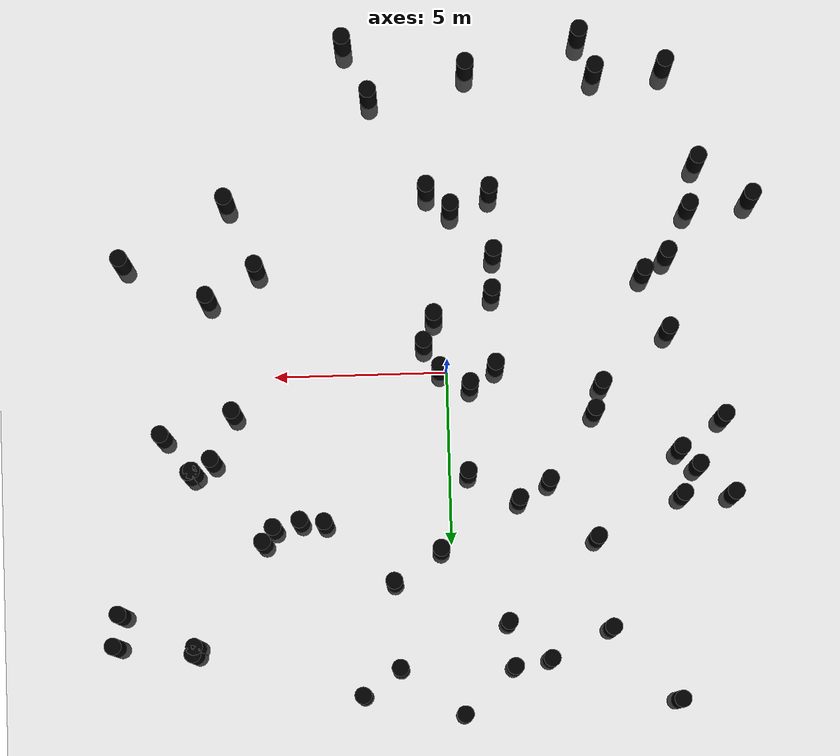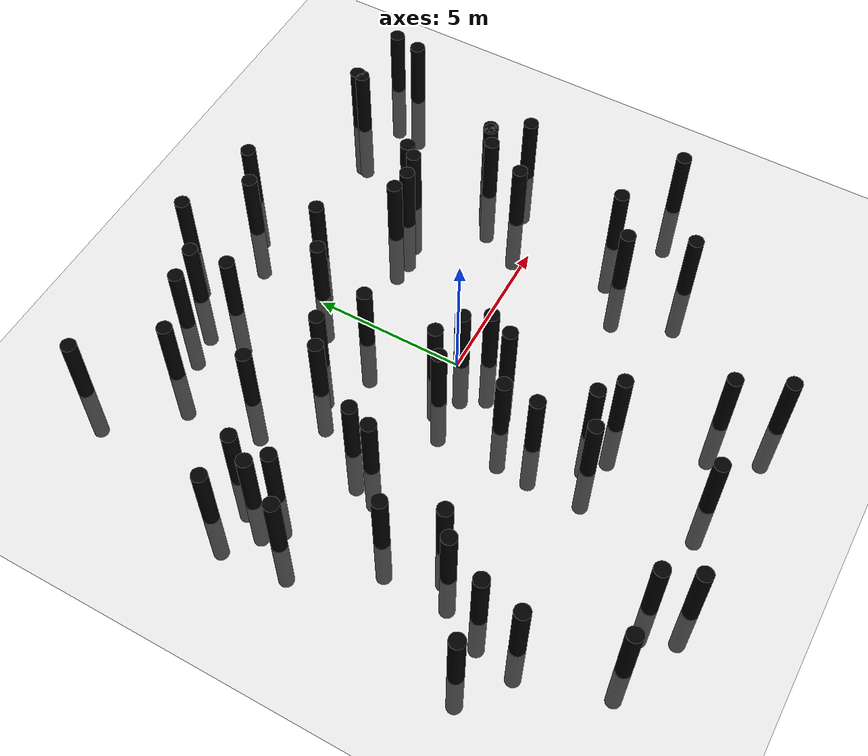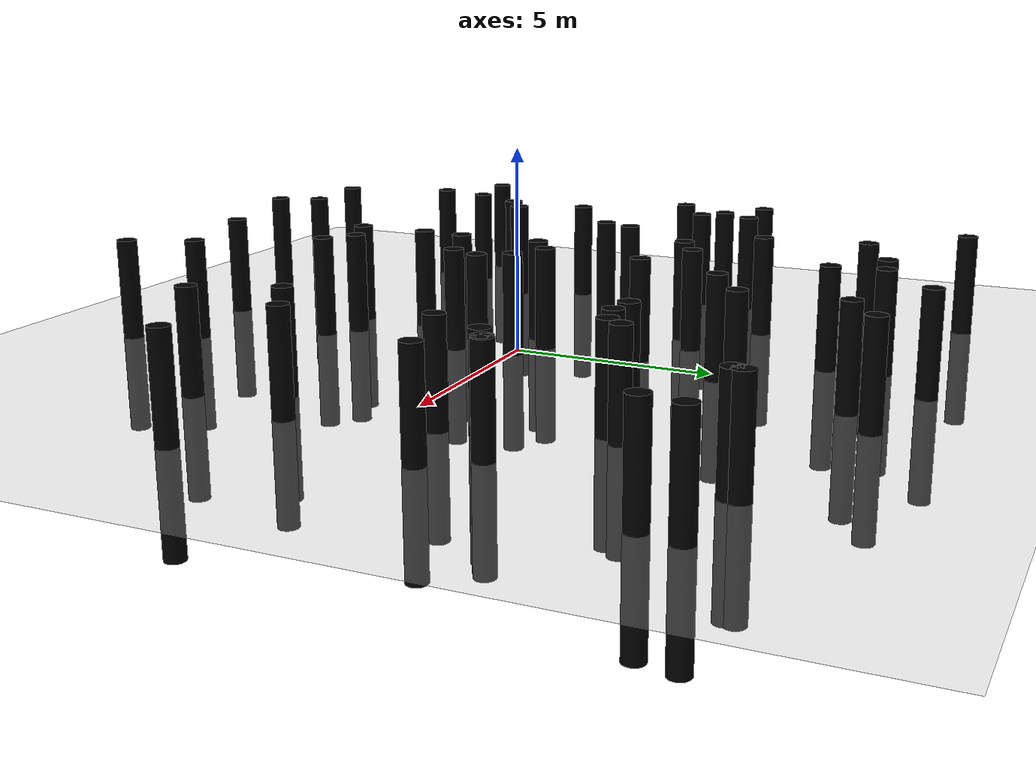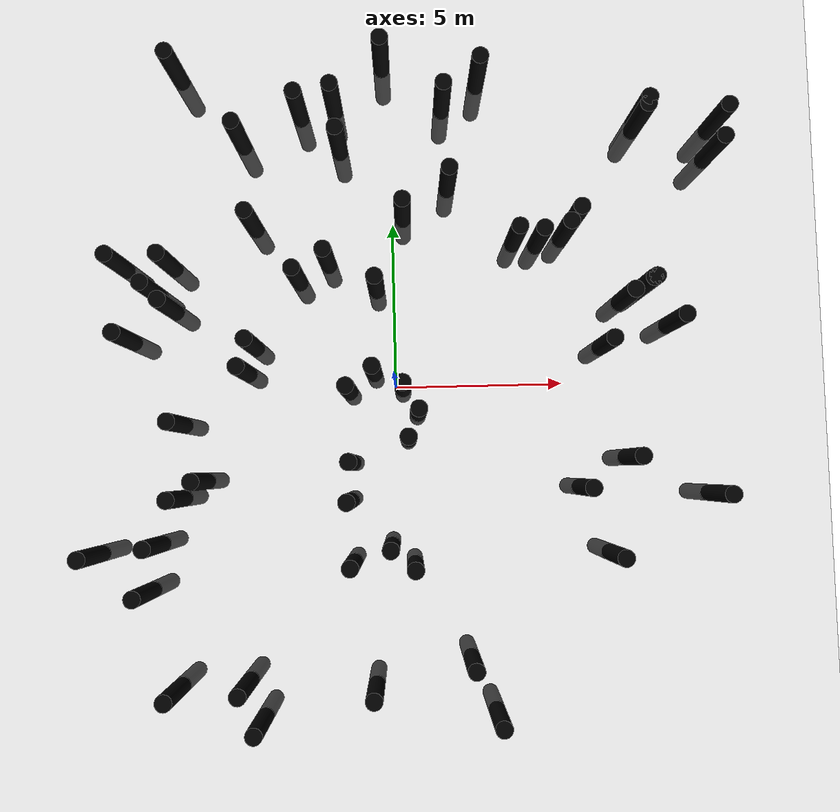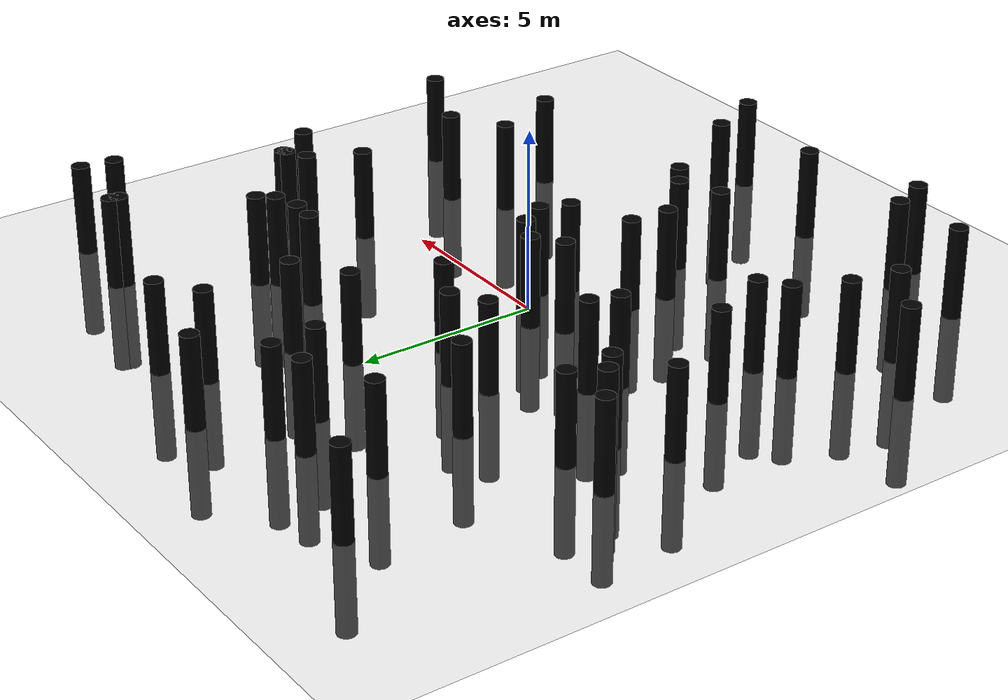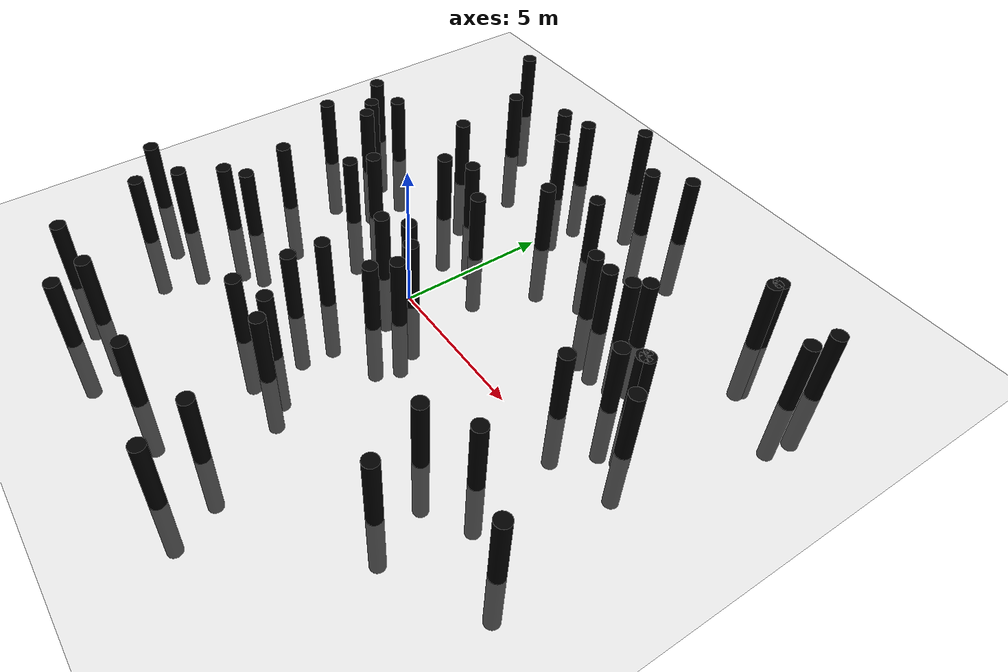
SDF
<?xml version="1.0"?>

<sdf version="1.6">
    <world name="world60">
        <physics name="4ms" type="ignored">
            <max_step_size>0.004</max_step_size>
            <real_time_factor>1.0</real_time_factor>
        </physics>
        <plugin
            filename="ignition-gazebo-physics-system"
            name="ignition::gazebo::systems::Physics">
        </plugin>
        <plugin
            filename="ignition-gazebo-scene-broadcaster-system"
            name="ignition::gazebo::systems::SceneBroadcaster">
        </plugin>
        <plugin
            filename="ignition-gazebo-user-commands-system"
            name="ignition::gazebo::systems::UserCommands">
        </plugin>
        <plugin
            filename="ignition-gazebo-sensors-system"
            name="ignition::gazebo::systems::Sensors">
            <render_engine>ogre2</render_engine>
        </plugin>

        <include>
            <uri>model://ground_plane</uri>
        </include>
        <include>
            <uri>model://pole</uri>
            <name>pole1</name>
            <pose>-7.11 -4.55 0 0 0 0</pose>
        </include>
        <include>
            <uri>model://pole</uri>
            <name>pole2</name>
            <pose>7.48 2.82 0 0 0 0</pose>
        </include>
        <include>
            <uri>model://pole</uri>
            <name>pole3</name>
            <pose>6.29 -5.08 0 0 0 0</pose>
        </include>
        <include>
            <uri>model://pole</uri>
            <name>pole4</name>
            <pose>-4.21 4.95 0 0 0 0</pose>
        </include>
        <include>
            <uri>model://pole</uri>
            <name>pole5</name>
            <pose>-6.53 -8.73 0 0 0 0</pose>
        </include>
        <include>
            <uri>model://pole</uri>
            <name>pole6</name>
            <pose>3.64 4.33 0 0 0 0</pose>
        </include>
        <include>
            <uri>model://pole</uri>
            <name>pole7</name>
            <pose>-8.18 3.78 0 0 0 0</pose>
        </include>
        <include>
            <uri>model://pole</uri>
            <name>pole8</name>
            <pose>7.48 8.02 0 0 0 0</pose>
        </include>
        <include>
            <uri>model://pole</uri>
            <name>pole9</name>
            <pose>0.65 -0.8 0 0 0 0</pose>
        </include>
        <include>
            <uri>model://pole</uri>
            <name>pole10</name>
            <pose>-4.47 0.5 0 0 0 0</pose>
        </include>
        <include>
            <uri>model://pole</uri>
            <name>pole11</name>
            <pose>-4.07 -9.67 0 0 0 0</pose>
        </include>
        <include>
            <uri>model://pole</uri>
            <name>pole12</name>
            <pose>7.39 2.77 0 0 0 0</pose>
        </include>
        <include>
            <uri>model://pole</uri>
            <name>pole13</name>
            <pose>0.34 -1.58 0 0 0 0</pose>
        </include>
        <include>
            <uri>model://pole</uri>
            <name>pole14</name>
            <pose>-1.36 -5.2 0 0 0 0</pose>
        </include>
        <include>
            <uri>model://pole</uri>
            <name>pole15</name>
            <pose>5.46 -3.12 0 0 0 0</pose>
        </include>
        <include>
            <uri>model://pole</uri>
            <name>pole16</name>
            <pose>-0.66 0.43 0 0 0 0</pose>
        </include>
        <include>
            <uri>model://pole</uri>
            <name>pole17</name>
            <pose>0.46 -5.29 0 0 0 0</pose>
        </include>
        <include>
            <uri>model://pole</uri>
            <name>pole18</name>
            <pose>6.88 -2.26 0 0 0 0</pose>
        </include>
        <include>
            <uri>model://pole</uri>
            <name>pole19</name>
            <pose>-1.43 -3.38 0 0 0 0</pose>
        </include>
        <include>
            <uri>model://pole</uri>
            <name>pole20</name>
            <pose>-7.39 -5.91 0 0 0 0</pose>
        </include>
        <include>
            <uri>model://pole</uri>
            <name>pole21</name>
            <pose>-6.47 9.67 0 0 0 0</pose>
        </include>
        <include>
            <uri>model://pole</uri>
            <name>pole22</name>
            <pose>-5.76 -2.71 0 0 0 0</pose>
        </include>
        <include>
            <uri>model://pole</uri>
            <name>pole23</name>
            <pose>6.85 2.45 0 0 0 0</pose>
        </include>
        <include>
            <uri>model://pole</uri>
            <name>pole24</name>
            <pose>6.21 1.08 0 0 0 0</pose>
        </include>
        <include>
            <uri>model://pole</uri>
            <name>pole25</name>
            <pose>-1.41 -0.11 0 0 0 0</pose>
        </include>
        <include>
            <uri>model://pole</uri>
            <name>pole26</name>
            <pose>-0.26 9.94 0 0 0 0</pose>
        </include>
        <include>
            <uri>model://pole</uri>
            <name>pole27</name>
            <pose>-7.96 1.54 0 0 0 0</pose>
        </include>
        <include>
            <uri>model://pole</uri>
            <name>pole28</name>
            <pose>9.59 6.83 0 0 0 0</pose>
        </include>
        <include>
            <uri>model://pole</uri>
            <name>pole29</name>
            <pose>5.11 4.45 0 0 0 0</pose>
        </include>
        <include>
            <uri>model://pole</uri>
            <name>pole30</name>
            <pose>-6.71 3.78 0 0 0 0</pose>
        </include>
        <include>
            <uri>model://pole</uri>
            <name>pole31</name>
            <pose>2.64 9.33 0 0 0 0</pose>
        </include>
        <include>
            <uri>model://pole</uri>
            <name>pole32</name>
            <pose>-7.18 2.95 0 0 0 0</pose>
        </include>
        <include>
            <uri>model://pole</uri>
            <name>pole33</name>
            <pose>7.43 7.81 0 0 0 0</pose>
        </include>
        <include>
            <uri>model://pole</uri>
            <name>pole34</name>
            <pose>-4.56 7.56 0 0 0 0</pose>
        </include>
        <include>
            <uri>model://pole</uri>
            <name>pole35</name>
            <pose>-1.99 3.79 0 0 0 0</pose>
        </include>
        <include>
            <uri>model://pole</uri>
            <name>pole36</name>
            <pose>-0.76 -8.81 0 0 0 0</pose>
        </include>
        <include>
            <uri>model://pole</uri>
            <name>pole37</name>
            <pose>-8.92 -4.8 0 0 0 0</pose>
        </include>
        <include>
            <uri>model://pole</uri>
            <name>pole38</name>
            <pose>-6.68 2.45 0 0 0 0</pose>
        </include>
        <include>
            <uri>model://pole</uri>
            <name>pole39</name>
            <pose>0.3 5.18 0 0 0 0</pose>
        </include>
        <include>
            <uri>model://pole</uri>
            <name>pole40</name>
            <pose>9.75 7.74 0 0 0 0</pose>
        </include>
        <include>
            <uri>model://pole</uri>
            <name>pole41</name>
            <pose>-4.24 1.28 0 0 0 0</pose>
        </include>
        <include>
            <uri>model://pole</uri>
            <name>pole42</name>
            <pose>1.56 8.57 0 0 0 0</pose>
        </include>
        <include>
            <uri>model://pole</uri>
            <name>pole43</name>
            <pose>2.07 -8.07 0 0 0 0</pose>
        </include>
        <include>
            <uri>model://pole</uri>
            <name>pole44</name>
            <pose>5.42 4.86 0 0 0 0</pose>
        </include>
        <include>
            <uri>model://pole</uri>
            <name>pole45</name>
            <pose>-0.22 -4.73 0 0 0 0</pose>
        </include>
        <include>
            <uri>model://pole</uri>
            <name>pole46</name>
            <pose>-6.45 -3.21 0 0 0 0</pose>
        </include>
        <include>
            <uri>model://pole</uri>
            <name>pole47</name>
            <pose>-1.59 7.32 0 0 0 0</pose>
        </include>
        <include>
            <uri>model://pole</uri>
            <name>pole48</name>
            <pose>-0.54 2.98 0 0 0 0</pose>
        </include>
        <include>
            <uri>model://pole</uri>
            <name>pole49</name>
            <pose>1.67 6.08 0 0 0 0</pose>
        </include>
        <include>
            <uri>model://pole</uri>
            <name>pole50</name>
            <pose>-2.78 8.41 0 0 0 0</pose>
        </include>
        <include>
            <uri>model://pole</uri>
            <name>pole51</name>
            <pose>-2.88 3.27 0 0 0 0</pose>
        </include>
        <include>
            <uri>model://pole</uri>
            <name>pole52</name>
            <pose>8.27 1.71 0 0 0 0</pose>
        </include>
        <include>
            <uri>model://pole</uri>
            <name>pole53</name>
            <pose>2.78 -9.63 0 0 0 0</pose>
        </include>
        <include>
            <uri>model://pole</uri>
            <name>pole54</name>
            <pose>-6.43 -1.01 0 0 0 0</pose>
        </include>
        <include>
            <uri>model://pole</uri>
            <name>pole55</name>
            <pose>-4.5 -8.61 0 0 0 0</pose>
        </include>
        <include>
            <uri>model://pole</uri>
            <name>pole56</name>
            <pose>-1.73 8.61 0 0 0 0</pose>
        </include>
        <include>
            <uri>model://pole</uri>
            <name>pole57</name>
            <pose>0.2 -0.05 0 0 0 0</pose>
        </include>
        <include>
            <uri>model://pole</uri>
            <name>pole58</name>
            <pose>9.34 -3.38 0 0 0 0</pose>
        </include>
        <include>
            <uri>model://pole</uri>
            <name>pole59</name>
            <pose>4.34 4.26 0 0 0 0</pose>
        </include>
        <include>
            <uri>model://pole</uri>
            <name>pole60</name>
            <pose>-1.36 -2.25 0 0 0 0</pose>
        </include>

    </world>
</sdf>

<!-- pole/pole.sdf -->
<sdf version="1.9">
    <model name="pole">
        <link name="pole">

            <visual name='visual'>
                <geometry>
                    <cylinder>
                        <radius>0.25</radius>
                        <length>5.0</length>
                    </cylinder>
                </geometry>
                <material>
                    <diffuse>0 0 0 1</diffuse>
                </material>
            </visual>

            <inertial>
                <mass>0.005</mass>
                <inertia>
                    <ixx>8.33e-06</ixx>
                    <ixy>0</ixy>
                    <ixz>0</ixz>
                    <iyy>8.33e-06</iyy>
                    <iyz>0</iyz>
                    <izz>8.33e-06</izz>
                </inertia>
            </inertial>

            <collision name="collision">
                <geometry>
                    <cylinder>
                        <radius>0.25</radius>
                        <length>5.0</length>
                    </cylinder>
                </geometry>
            </collision>
        </link>
        <frame name="mount_point"/>
    </model>
</sdf>
